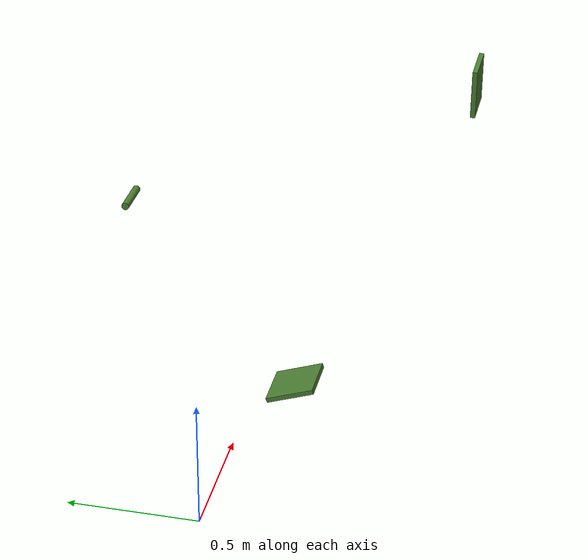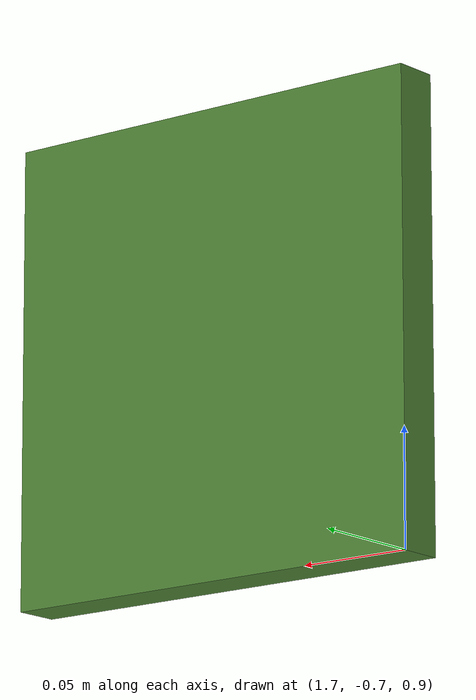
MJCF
<mujoco model="SampleField">
  <compiler angle="radian" autolimits="true"/>

  <worldbody>
    <body name="box1" pos="0.9 -0.15342 0.0406031">
        <geom size="0.1 0.1 0.01" quat="0.984808 -0.173648 0 0" type="box" rgba="0.3 0.5 0.2 1" condim="3" group="1" density="0"/>
    </body>

    <body name="cylinder1" pos="0.9 0.5 0.8">
        <geom size="0.015 0.075" quat="0.5 0.5 0.5 0.5" type="cylinder" rgba="0.3 0.5 0.2 1" condim="3" group="1" density="0"/>
    </body>

    <body name="box2" pos="1.8 -0.71 1">
        <geom size="0.1 0.1 0.01" quat="0.707107 -0.707107 0 0" type="box" rgba="0.3 0.5 0.2 1" condim="3" group="1" density="0"/>
    </body>
  </worldbody>
</mujoco>
